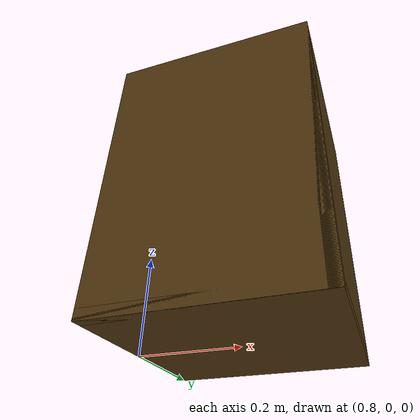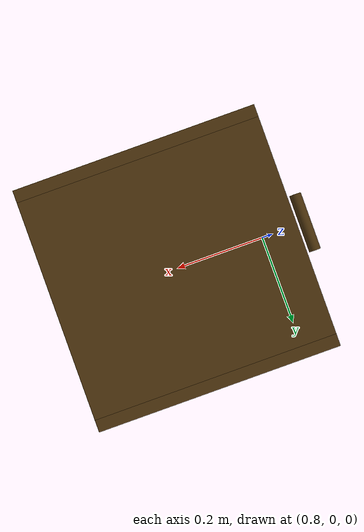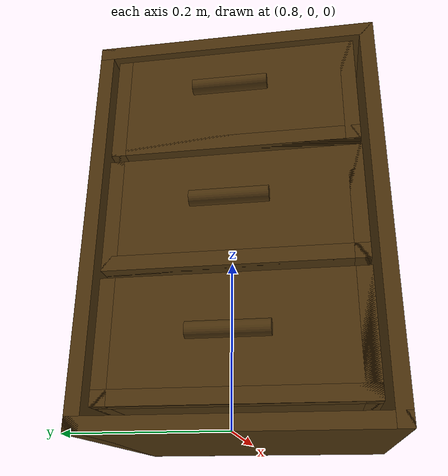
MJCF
<mujoco model="drawer">
  <compiler angle="radian" autolimits="true" />
  <option impratio="10" />
  <default>
    <default class="visual">
      <geom type="mesh" contype="0" conaffinity="0" group="2" />
    </default>
    <default class="collision">
      <geom type="mesh" group="3" />
    </default>
  </default>

  <asset>
    <material name="wood" rgba="0.3 0.2 0.05 1" />
  </asset>
  <worldbody>
    <body name="drawer" pos="1.0 0.0 0.0" euler="0 0 3.14">
      <geom size="0.2 0.01 0.28" pos="0 -0.19 0.28" class="visual" type="box" material="wood" />
      <geom size="0.2 0.01 0.28" pos="0 0.19 0.28" class="visual" type="box" material="wood" />
      <geom size="0.2 0.2 0.01" pos="0 0 0.01" class="visual" type="box" material="wood" />
      <geom size="0.2 0.2 0.01" pos="0 0 0.55" class="visual" type="box" material="wood" />
      <geom size="0.01 0.2 0.28" pos="-0.19 0 0.28" class="visual" type="box" material="wood" />

      <geom size="0.2 0.01 0.28" pos="0 -0.19 0.28" class="collision" type="box" />
      <geom size="0.2 0.01 0.28" pos="0 0.19 0.28" class="collision" type="box" />
      <geom size="0.2 0.2 0.01" pos="0 0 0.01" class="collision" type="box" />
      <geom size="0.2 0.2 0.01" pos="0 0 0.55" class="collision" type="box" />
      <geom size="0.01 0.2 0.28" pos="-0.19 0 0.28" class="collision" type="box" />

      <body name="bottom_drawer" pos="0.03 0 0.11">
        <joint name="bottom_drawer_slide" type="slide" axis="1 0 0" limited="true" range="0 0.3"
          damping="50.0" frictionloss="1.0" />

        <!-- bottom -->
        <geom size="0.17 0.17 0.01" class="visual" type="box" pos="0 0 -0.07" material="wood" />
        <!-- left and right -->
        <geom size="0.17 0.01 0.08" class="visual" type="box" pos="0 0.16 0" material="wood" />
        <geom size="0.17 0.01 0.08" class="visual" type="box" pos="0 -0.16 0" material="wood" />
        <!-- front and back -->
        <geom size="0.01 0.17 0.08" class="visual" type="box" pos="0.16 0 0" material="wood" />
        <geom size="0.01 0.17 0.08" class="visual" type="box" pos="-0.16 0 0" material="wood" />

        <!-- bottom -->
        <geom size="0.17 0.17 0.01" class="collision" type="box" pos="0 0 -0.07" />
        <!-- left and right -->
        <geom size="0.17 0.01 0.08" class="collision" type="box" pos="0 0.16 0" />
        <geom size="0.17 0.01 0.08" class="collision" type="box" pos="0 -0.16 0" />
        <!-- front and back -->
        <geom size="0.01 0.17 0.08" class="collision" type="box" pos="0.16 0 0" />
        <geom size="0.01 0.17 0.08" class="collision" type="box" pos="-0.16 0 0" />

        <body name="bottom_drawer_handle" pos="0.2 0 0" euler="1.57 0 0">
          <geom size="0.01 0.05" class="visual" type="cylinder" material="wood" />
          <geom size="0.01 0.05" class="collision" type="cylinder" />
        </body>
      </body>
      <body name="middle_drawer" pos="0.03 0 0.28">
        <joint name="middle_drawer_slide" type="slide" axis="1 0 0" limited="true" range="0 0.3"
          damping="50.0" frictionloss="1.0" />

        <!-- bottom -->
        <geom size="0.17 0.17 0.01" class="visual" type="box" pos="0 0 -0.07" material="wood" />
        <!-- left and right -->
        <geom size="0.17 0.01 0.08" class="visual" type="box" pos="0 0.16 0" material="wood" />
        <geom size="0.17 0.01 0.08" class="visual" type="box" pos="0 -0.16 0" material="wood" />
        <!-- front and back -->
        <geom size="0.01 0.17 0.08" class="visual" type="box" pos="0.16 0 0" material="wood" />
        <geom size="0.01 0.17 0.08" class="visual" type="box" pos="-0.16 0 0" material="wood" />

        <!-- bottom -->
        <geom size="0.17 0.17 0.01" class="collision" type="box" pos="0 0 -0.07" />
        <!-- left and right -->
        <geom size="0.17 0.01 0.08" class="collision" type="box" pos="0 0.16 0" />
        <geom size="0.17 0.01 0.08" class="collision" type="box" pos="0 -0.16 0" />
        <!-- front and back -->
        <geom size="0.01 0.17 0.08" class="collision" type="box" pos="0.16 0 0" />
        <geom size="0.01 0.17 0.08" class="collision" type="box" pos="-0.16 0 0" />

        <body name="middle_drawer_handle" pos="0.2 0 0" euler="1.57 0 0">
          <geom size="0.01 0.05" class="visual" type="cylinder" material="wood" />
          <geom size="0.01 0.05" class="collision" type="cylinder" />
        </body>
      </body>
      <body name="top_drawer" pos="0.03 0 0.45">
        <joint name="top_drawer_slide" type="slide" axis="1 0 0" limited="true" range="0 0.3"
          damping="50.0" frictionloss="1.0" />

        <!-- bottom -->
        <geom size="0.17 0.17 0.01" class="visual" type="box" pos="0 0 -0.07" material="wood" />
        <!-- left and right -->
        <geom size="0.17 0.01 0.08" class="visual" type="box" pos="0 0.16 0" material="wood" />
        <geom size="0.17 0.01 0.08" class="visual" type="box" pos="0 -0.16 0" material="wood" />
        <!-- front and back -->
        <geom size="0.01 0.17 0.08" class="visual" type="box" pos="0.16 0 0" material="wood" />
        <geom size="0.01 0.17 0.08" class="visual" type="box" pos="-0.16 0 0" material="wood" />

        <!-- bottom -->
        <geom size="0.17 0.17 0.01" class="collision" type="box" pos="0 0 -0.07" />
        <!-- left and right -->
        <geom size="0.17 0.01 0.08" class="collision" type="box" pos="0 0.16 0" />
        <geom size="0.17 0.01 0.08" class="collision" type="box" pos="0 -0.16 0" />
        <!-- front and back -->
        <geom size="0.01 0.17 0.08" class="collision" type="box" pos="0.16 0 0" />
        <geom size="0.01 0.17 0.08" class="collision" type="box" pos="-0.16 0 0" />

        <body name="top_drawer_handle" pos="0.2 0 0" euler="1.57 0 0">
          <geom size="0.01 0.05" class="visual" type="cylinder" material="wood" />
          <geom size="0.01 0.05" class="collision" type="cylinder" />
        </body>
      </body>
    </body>

  </worldbody>
</mujoco>
